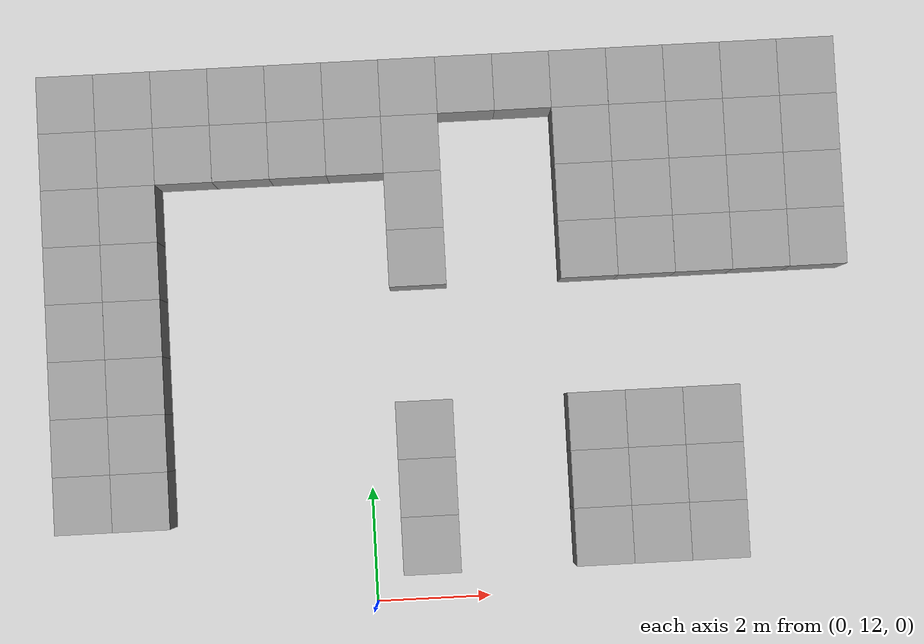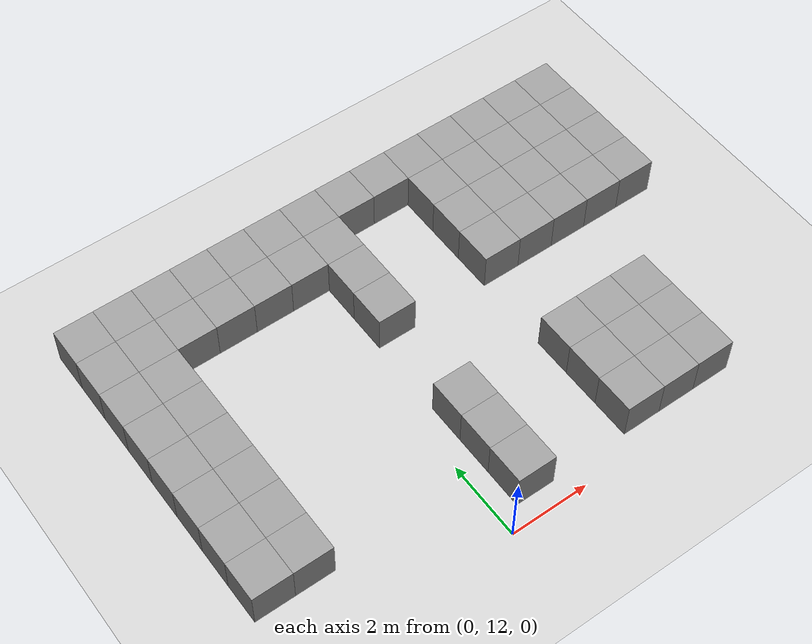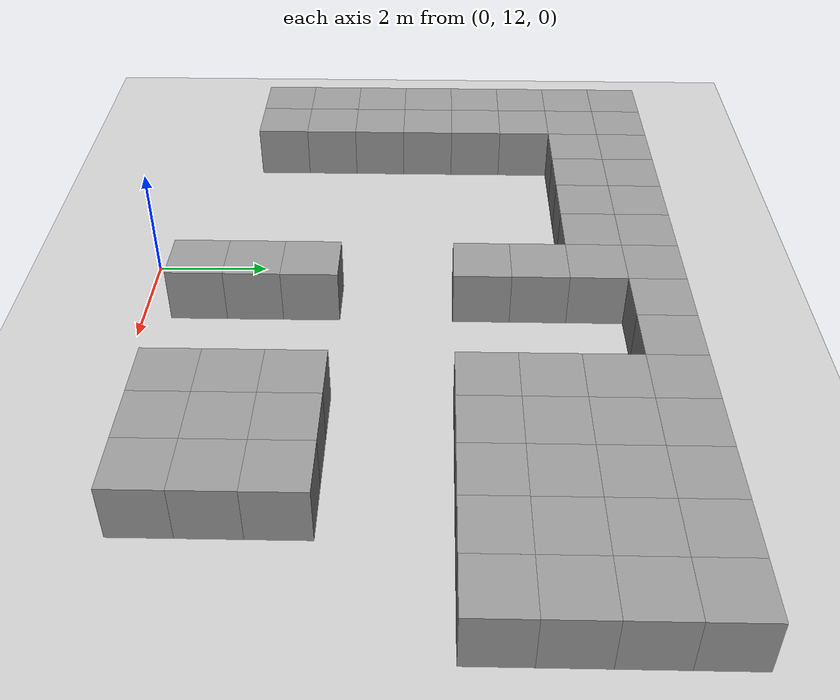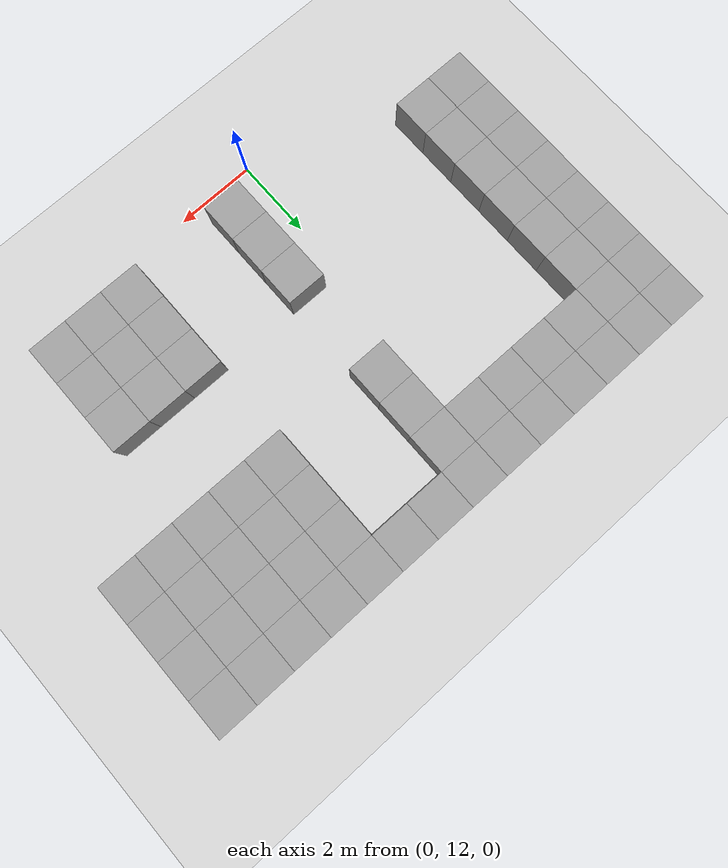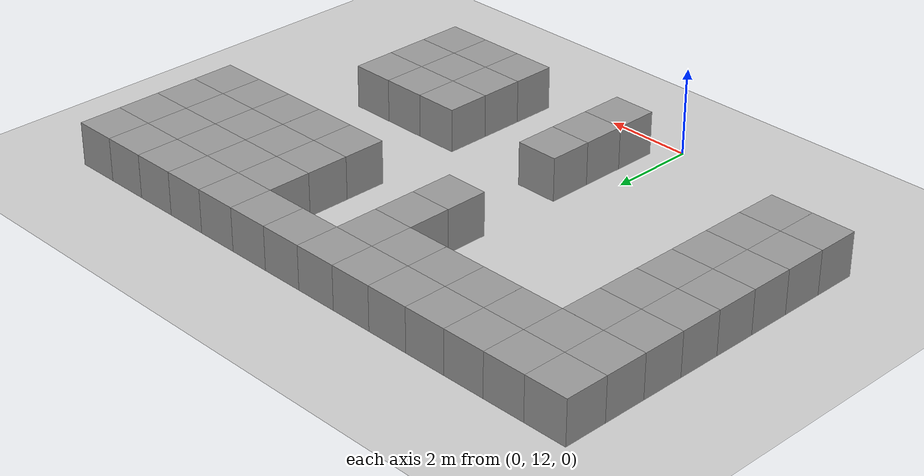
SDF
<sdf version="1.4">
 <world name="default">
  <model name="ground_plane">
   <static>true</static>
   <link name="link">
    <collision name="collision">
     <geometry><plane><normal>0 0 1</normal><size>100 100</size></plane></geometry>
     <surface><friction><ode><mu>100</mu><mu2>50</mu2></ode></friction></surface>
    </collision>
    <visual name="visual">
     <cast_shadows>0</cast_shadows>
     <geometry><plane><normal>0 0 1</normal><size>100 100</size></plane></geometry>
     <material>
      <script><uri>file://media/materials/scripts/gazebo.material</uri><name>Gazebo/Grey</name></script>
     </material>
    </visual>
    <velocity_decay><linear>0</linear><angular>0</angular></velocity_decay>
   </link>
  </model>
  <model name="unit_box_76">
   <pose>-5 14 0.5 0 -0 6e-06</pose>
   <static>true</static>
   <link name="link">
    <inertial>
     <mass>1</mass>
     <inertia><ixx>1</ixx><ixy>0</ixy><ixz>0</ixz><iyy>1</iyy><iyz>0</iyz><izz>1</izz></inertia>
    </inertial>
    <collision name="collision"><geometry><box><size>1 1 1</size></box></geometry></collision>
    <visual name="visual">
     <geometry><box><size>1 1 1</size></box></geometry>
     <material>
      <script><uri>file://media/materials/scripts/gazebo.material</uri><name>Gazebo/Grey</name></script>
     </material>
    </visual>
    <velocity_decay><linear>0</linear><angular>0</angular></velocity_decay>
   </link>
   <static>true</static>
  </model>
  <model name="unit_box_77">
   <pose>-4.99999 15 0.5 0 -0 7e-06</pose>
   <static>true</static>
   <link name="link">
    <inertial>
     <mass>1</mass>
     <inertia><ixx>1</ixx><ixy>0</ixy><ixz>0</ixz><iyy>1</iyy><iyz>0</iyz><izz>1</izz></inertia>
    </inertial>
    <collision name="collision"><geometry><box><size>1 1 1</size></box></geometry></collision>
    <visual name="visual">
     <geometry><box><size>1 1 1</size></box></geometry>
     <material>
      <script><uri>file://media/materials/scripts/gazebo.material</uri><name>Gazebo/Grey</name></script>
     </material>
    </visual>
    <velocity_decay><linear>0</linear><angular>0</angular></velocity_decay>
   </link>
   <static>true</static>
  </model>
  <model name="unit_box_78">
   <pose>-5 16 0.5 0 -0 7e-06</pose>
   <static>true</static>
   <link name="link">
    <inertial>
     <mass>1</mass>
     <inertia><ixx>1</ixx><ixy>0</ixy><ixz>0</ixz><iyy>1</iyy><iyz>0</iyz><izz>1</izz></inertia>
    </inertial>
    <collision name="collision"><geometry><box><size>1 1 1</size></box></geometry></collision>
    <visual name="visual">
     <geometry><box><size>1 1 1</size></box></geometry>
     <material>
      <script><uri>file://media/materials/scripts/gazebo.material</uri><name>Gazebo/Grey</name></script>
     </material>
    </visual>
    <velocity_decay><linear>0</linear><angular>0</angular></velocity_decay>
   </link>
   <static>true</static>
  </model>
  <model name="unit_box_79">
   <pose>-4.99997 17 0.5 0 -0 6e-06</pose>
   <static>true</static>
   <link name="link">
    <inertial>
     <mass>1</mass>
     <inertia><ixx>1</ixx><ixy>0</ixy><ixz>0</ixz><iyy>1</iyy><iyz>0</iyz><izz>1</izz></inertia>
    </inertial>
    <collision name="collision"><geometry><box><size>1 1 1</size></box></geometry></collision>
    <visual name="visual">
     <geometry><box><size>1 1 1</size></box></geometry>
     <material>
      <script><uri>file://media/materials/scripts/gazebo.material</uri><name>Gazebo/Grey</name></script>
     </material>
    </visual>
    <velocity_decay><linear>0</linear><angular>0</angular></velocity_decay>
   </link>
   <static>true</static>
  </model>
  <model name="unit_box_80">
   <pose>-4.99997 18 0.5 0 -0 3e-06</pose>
   <static>true</static>
   <link name="link">
    <inertial>
     <mass>1</mass>
     <inertia><ixx>1</ixx><ixy>0</ixy><ixz>0</ixz><iyy>1</iyy><iyz>0</iyz><izz>1</izz></inertia>
    </inertial>
    <collision name="collision"><geometry><box><size>1 1 1</size></box></geometry></collision>
    <visual name="visual">
     <geometry><box><size>1 1 1</size></box></geometry>
     <material>
      <script><uri>file://media/materials/scripts/gazebo.material</uri><name>Gazebo/Grey</name></script>
     </material>
    </visual>
    <velocity_decay><linear>0</linear><angular>0</angular></velocity_decay>
   </link>
   <static>true</static>
  </model>
  <model name="unit_box_96">
   <pose>-4.99997 19 0.5 0 -0 1e-06</pose>
   <static>true</static>
   <link name="link">
    <inertial>
     <mass>1</mass>
     <inertia><ixx>1</ixx><ixy>0</ixy><ixz>0</ixz><iyy>1</iyy><iyz>0</iyz><izz>1</izz></inertia>
    </inertial>
    <collision name="collision"><geometry><box><size>1 1 1</size></box></geometry></collision>
    <visual name="visual">
     <geometry><box><size>1 1 1</size></box></geometry>
     <material>
      <script><uri>file://media/materials/scripts/gazebo.material</uri><name>Gazebo/Grey</name></script>
     </material>
    </visual>
    <velocity_decay><linear>0</linear><angular>0</angular></velocity_decay>
   </link>
   <static>true</static>
  </model>
  <model name="unit_box_97">
   <pose>-4.99997 20 0.5 0 -0 1e-06</pose>
   <static>true</static>
   <link name="link">
    <inertial>
     <mass>1</mass>
     <inertia><ixx>1</ixx><ixy>0</ixy><ixz>0</ixz><iyy>1</iyy><iyz>0</iyz><izz>1</izz></inertia>
    </inertial>
    <collision name="collision"><geometry><box><size>1 1 1</size></box></geometry></collision>
    <visual name="visual">
     <geometry><box><size>1 1 1</size></box></geometry>
     <material>
      <script><uri>file://media/materials/scripts/gazebo.material</uri><name>Gazebo/Grey</name></script>
     </material>
    </visual>
    <velocity_decay><linear>0</linear><angular>0</angular></velocity_decay>
   </link>
   <static>true</static>
  </model>
  <model name="unit_box_98">
   <pose>-5.00001 21 0.5 0 -0 0</pose>
   <static>true</static>
   <link name="link">
    <inertial>
     <mass>1</mass>
     <inertia><ixx>1</ixx><ixy>0</ixy><ixz>0</ixz><iyy>1</iyy><iyz>0</iyz><izz>1</izz></inertia>
    </inertial>
    <collision name="collision"><geometry><box><size>1 1 1</size></box></geometry></collision>
    <visual name="visual">
     <geometry><box><size>1 1 1</size></box></geometry>
     <material>
      <script><uri>file://media/materials/scripts/gazebo.material</uri><name>Gazebo/Grey</name></script>
     </material>
    </visual>
    <velocity_decay><linear>0</linear><angular>0</angular></velocity_decay>
   </link>
   <static>true</static>
  </model>
  <model name="unit_box_99">
   <pose>-4.00001 21 0.5 0 0 -1e-06</pose>
   <static>true</static>
   <link name="link">
    <inertial>
     <mass>1</mass>
     <inertia><ixx>1</ixx><ixy>0</ixy><ixz>0</ixz><iyy>1</iyy><iyz>0</iyz><izz>1</izz></inertia>
    </inertial>
    <collision name="collision"><geometry><box><size>1 1 1</size></box></geometry></collision>
    <visual name="visual">
     <geometry><box><size>1 1 1</size></box></geometry>
     <material>
      <script><uri>file://media/materials/scripts/gazebo.material</uri><name>Gazebo/Grey</name></script>
     </material>
    </visual>
    <velocity_decay><linear>0</linear><angular>0</angular></velocity_decay>
   </link>
   <static>true</static>
  </model>
  <model name="unit_box_100">
   <pose>-3.00001 21 0.5 0 0 -1e-06</pose>
   <static>true</static>
   <link name="link">
    <inertial>
     <mass>1</mass>
     <inertia><ixx>1</ixx><ixy>0</ixy><ixz>0</ixz><iyy>1</iyy><iyz>0</iyz><izz>1</izz></inertia>
    </inertial>
    <collision name="collision"><geometry><box><size>1 1 1</size></box></geometry></collision>
    <visual name="visual">
     <geometry><box><size>1 1 1</size></box></geometry>
     <material>
      <script><uri>file://media/materials/scripts/gazebo.material</uri><name>Gazebo/Grey</name></script>
     </material>
    </visual>
    <velocity_decay><linear>0</linear><angular>0</angular></velocity_decay>
   </link>
   <static>true</static>
  </model>
  <model name="unit_box_101">
   <pose>-2.00001 21 0.5 0 0 -1e-06</pose>
   <static>true</static>
   <link name="link">
    <inertial>
     <mass>1</mass>
     <inertia><ixx>1</ixx><ixy>0</ixy><ixz>0</ixz><iyy>1</iyy><iyz>0</iyz><izz>1</izz></inertia>
    </inertial>
    <collision name="collision"><geometry><box><size>1 1 1</size></box></geometry></collision>
    <visual name="visual">
     <geometry><box><size>1 1 1</size></box></geometry>
     <material>
      <script><uri>file://media/materials/scripts/gazebo.material</uri><name>Gazebo/Grey</name></script>
     </material>
    </visual>
    <velocity_decay><linear>0</linear><angular>0</angular></velocity_decay>
   </link>
   <static>true</static>
  </model>
  <model name="unit_box_102">
   <pose>-1.00001 21 0.5 0 -0 0</pose>
   <static>true</static>
   <link name="link">
    <inertial>
     <mass>1</mass>
     <inertia><ixx>1</ixx><ixy>0</ixy><ixz>0</ixz><iyy>1</iyy><iyz>0</iyz><izz>1</izz></inertia>
    </inertial>
    <collision name="collision"><geometry><box><size>1 1 1</size></box></geometry></collision>
    <visual name="visual">
     <geometry><box><size>1 1 1</size></box></geometry>
     <material>
      <script><uri>file://media/materials/scripts/gazebo.material</uri><name>Gazebo/Grey</name></script>
     </material>
    </visual>
    <velocity_decay><linear>0</linear><angular>0</angular></velocity_decay>
   </link>
   <static>true</static>
  </model>
  <model name="unit_box_103">
   <pose>-1e-05 21 0.5 0 -0 0</pose>
   <static>true</static>
   <link name="link">
    <inertial>
     <mass>1</mass>
     <inertia><ixx>1</ixx><ixy>0</ixy><ixz>0</ixz><iyy>1</iyy><iyz>0</iyz><izz>1</izz></inertia>
    </inertial>
    <collision name="collision"><geometry><box><size>1 1 1</size></box></geometry></collision>
    <visual name="visual">
     <geometry><box><size>1 1 1</size></box></geometry>
     <material>
      <script><uri>file://media/materials/scripts/gazebo.material</uri><name>Gazebo/Grey</name></script>
     </material>
    </visual>
    <velocity_decay><linear>0</linear><angular>0</angular></velocity_decay>
   </link>
   <static>true</static>
  </model>
  <model name="unit_box_104">
   <pose>0.999991 21 0.5 0 -0 0</pose>
   <static>true</static>
   <link name="link">
    <inertial>
     <mass>1</mass>
     <inertia><ixx>1</ixx><ixy>0</ixy><ixz>0</ixz><iyy>1</iyy><iyz>0</iyz><izz>1</izz></inertia>
    </inertial>
    <collision name="collision"><geometry><box><size>1 1 1</size></box></geometry></collision>
    <visual name="visual">
     <geometry><box><size>1 1 1</size></box></geometry>
     <material>
      <script><uri>file://media/materials/scripts/gazebo.material</uri><name>Gazebo/Grey</name></script>
     </material>
    </visual>
    <velocity_decay><linear>0</linear><angular>0</angular></velocity_decay>
   </link>
   <static>true</static>
  </model>
  <model name="unit_box_105">
   <pose>1.99999 21 0.5 0 -0 0</pose>
   <static>true</static>
   <link name="link">
    <inertial>
     <mass>1</mass>
     <inertia><ixx>1</ixx><ixy>0</ixy><ixz>0</ixz><iyy>1</iyy><iyz>0</iyz><izz>1</izz></inertia>
    </inertial>
    <collision name="collision"><geometry><box><size>1 1 1</size></box></geometry></collision>
    <visual name="visual">
     <geometry><box><size>1 1 1</size></box></geometry>
     <material>
      <script><uri>file://media/materials/scripts/gazebo.material</uri><name>Gazebo/Grey</name></script>
     </material>
    </visual>
    <velocity_decay><linear>0</linear><angular>0</angular></velocity_decay>
   </link>
   <static>true</static>
  </model>
  <model name="unit_box_106">
   <pose>2.99999 21 0.5 0 -0 1e-06</pose>
   <static>true</static>
   <link name="link">
    <inertial>
     <mass>1</mass>
     <inertia><ixx>1</ixx><ixy>0</ixy><ixz>0</ixz><iyy>1</iyy><iyz>0</iyz><izz>1</izz></inertia>
    </inertial>
    <collision name="collision"><geometry><box><size>1 1 1</size></box></geometry></collision>
    <visual name="visual">
     <geometry><box><size>1 1 1</size></box></geometry>
     <material>
      <script><uri>file://media/materials/scripts/gazebo.material</uri><name>Gazebo/Grey</name></script>
     </material>
    </visual>
    <velocity_decay><linear>0</linear><angular>0</angular></velocity_decay>
   </link>
   <static>true</static>
  </model>
  <model name="unit_box_107">
   <pose>3.99999 21 0.5 0 -0 2e-06</pose>
   <static>true</static>
   <link name="link">
    <inertial>
     <mass>1</mass>
     <inertia><ixx>1</ixx><ixy>0</ixy><ixz>0</ixz><iyy>1</iyy><iyz>0</iyz><izz>1</izz></inertia>
    </inertial>
    <collision name="collision"><geometry><box><size>1 1 1</size></box></geometry></collision>
    <visual name="visual">
     <geometry><box><size>1 1 1</size></box></geometry>
     <material>
      <script><uri>file://media/materials/scripts/gazebo.material</uri><name>Gazebo/Grey</name></script>
     </material>
    </visual>
    <velocity_decay><linear>0</linear><angular>0</angular></velocity_decay>
   </link>
   <static>true</static>
  </model>
  <model name="unit_box_108">
   <pose>5 21 0.5 0 -0 3e-06</pose>
   <static>true</static>
   <link name="link">
    <inertial>
     <mass>1</mass>
     <inertia><ixx>1</ixx><ixy>0</ixy><ixz>0</ixz><iyy>1</iyy><iyz>0</iyz><izz>1</izz></inertia>
    </inertial>
    <collision name="collision"><geometry><box><size>1 1 1</size></box></geometry></collision>
    <visual name="visual">
     <geometry><box><size>1 1 1</size></box></geometry>
     <material>
      <script><uri>file://media/materials/scripts/gazebo.material</uri><name>Gazebo/Grey</name></script>
     </material>
    </visual>
    <velocity_decay><linear>0</linear><angular>0</angular></velocity_decay>
   </link>
   <static>true</static>
  </model>
  <model name="unit_box_109">
   <pose>6 20.9999 0.5 0 -0 3e-06</pose>
   <static>true</static>
   <link name="link">
    <inertial>
     <mass>1</mass>
     <inertia><ixx>1</ixx><ixy>0</ixy><ixz>0</ixz><iyy>1</iyy><iyz>0</iyz><izz>1</izz></inertia>
    </inertial>
    <collision name="collision"><geometry><box><size>1 1 1</size></box></geometry></collision>
    <visual name="visual">
     <geometry><box><size>1 1 1</size></box></geometry>
     <material>
      <script><uri>file://media/materials/scripts/gazebo.material</uri><name>Gazebo/Grey</name></script>
     </material>
    </visual>
    <velocity_decay><linear>0</linear><angular>0</angular></velocity_decay>
   </link>
   <static>true</static>
  </model>
  <model name="unit_box_110">
   <pose>7 21 0.5 0 -0 4e-06</pose>
   <static>true</static>
   <link name="link">
    <inertial>
     <mass>1</mass>
     <inertia><ixx>1</ixx><ixy>0</ixy><ixz>0</ixz><iyy>1</iyy><iyz>0</iyz><izz>1</izz></inertia>
    </inertial>
    <collision name="collision"><geometry><box><size>1 1 1</size></box></geometry></collision>
    <visual name="visual">
     <geometry><box><size>1 1 1</size></box></geometry>
     <material>
      <script><uri>file://media/materials/scripts/gazebo.material</uri><name>Gazebo/Grey</name></script>
     </material>
    </visual>
    <velocity_decay><linear>0</linear><angular>0</angular></velocity_decay>
   </link>
   <static>true</static>
  </model>
  <model name="unit_box_111">
   <pose>8 21 0.5 0 -0 3e-06</pose>
   <static>true</static>
   <link name="link">
    <inertial>
     <mass>1</mass>
     <inertia><ixx>1</ixx><ixy>0</ixy><ixz>0</ixz><iyy>1</iyy><iyz>0</iyz><izz>1</izz></inertia>
    </inertial>
    <collision name="collision"><geometry><box><size>1 1 1</size></box></geometry></collision>
    <visual name="visual">
     <geometry><box><size>1 1 1</size></box></geometry>
     <material>
      <script><uri>file://media/materials/scripts/gazebo.material</uri><name>Gazebo/Grey</name></script>
     </material>
    </visual>
    <velocity_decay><linear>0</linear><angular>0</angular></velocity_decay>
   </link>
   <static>true</static>
  </model>
  <model name="unit_box_73_0">
   <pose>-3.99993 14 0.5 -0 -0 -2e-06</pose>
   <link name="link">
    <inertial>
     <mass>1</mass>
     <inertia><ixx>1</ixx><ixy>0</ixy><ixz>0</ixz><iyy>1</iyy><iyz>0</iyz><izz>1</izz></inertia>
    </inertial>
    <collision name="collision"><geometry><box><size>1 1 1</size></box></geometry></collision>
    <visual name="visual">
     <geometry><box><size>1 1 1</size></box></geometry>
     <material>
      <script><uri>file://media/materials/scripts/gazebo.material</uri><name>Gazebo/Grey</name></script>
     </material>
    </visual>
    <velocity_decay><linear>0</linear><angular>0</angular></velocity_decay>
   </link>
   <static>true</static>
  </model>
  <model name="unit_box_74_0">
   <pose>-3.99993 15 0.5 0 0 -4e-06</pose>
   <link name="link">
    <inertial>
     <mass>1</mass>
     <inertia><ixx>1</ixx><ixy>0</ixy><ixz>0</ixz><iyy>1</iyy><iyz>0</iyz><izz>1</izz></inertia>
    </inertial>
    <collision name="collision"><geometry><box><size>1 1 1</size></box></geometry></collision>
    <visual name="visual">
     <geometry><box><size>1 1 1</size></box></geometry>
     <material>
      <script><uri>file://media/materials/scripts/gazebo.material</uri><name>Gazebo/Grey</name></script>
     </material>
    </visual>
    <velocity_decay><linear>0</linear><angular>0</angular></velocity_decay>
   </link>
   <static>true</static>
  </model>
  <model name="unit_box_75_0">
   <pose>-3.99999 16 0.5 0 -0 -3e-06</pose>
   <link name="link">
    <inertial>
     <mass>1</mass>
     <inertia><ixx>1</ixx><ixy>0</ixy><ixz>0</ixz><iyy>1</iyy><iyz>0</iyz><izz>1</izz></inertia>
    </inertial>
    <collision name="collision"><geometry><box><size>1 1 1</size></box></geometry></collision>
    <visual name="visual">
     <geometry><box><size>1 1 1</size></box></geometry>
     <material>
      <script><uri>file://media/materials/scripts/gazebo.material</uri><name>Gazebo/Grey</name></script>
     </material>
    </visual>
    <velocity_decay><linear>0</linear><angular>0</angular></velocity_decay>
   </link>
   <static>true</static>
  </model>
  <model name="unit_box_76_0">
   <pose>-3.99995 17 0.5 0 0 -4e-06</pose>
   <link name="link">
    <inertial>
     <mass>1</mass>
     <inertia><ixx>1</ixx><ixy>0</ixy><ixz>0</ixz><iyy>1</iyy><iyz>0</iyz><izz>1</izz></inertia>
    </inertial>
    <collision name="collision"><geometry><box><size>1 1 1</size></box></geometry></collision>
    <visual name="visual">
     <geometry><box><size>1 1 1</size></box></geometry>
     <material>
      <script><uri>file://media/materials/scripts/gazebo.material</uri><name>Gazebo/Grey</name></script>
     </material>
    </visual>
    <velocity_decay><linear>0</linear><angular>0</angular></velocity_decay>
   </link>
   <static>true</static>
  </model>
  <model name="unit_box_77_0">
   <pose>-3.99995 18 0.5 0 0 -4e-06</pose>
   <link name="link">
    <inertial>
     <mass>1</mass>
     <inertia><ixx>1</ixx><ixy>0</ixy><ixz>0</ixz><iyy>1</iyy><iyz>0</iyz><izz>1</izz></inertia>
    </inertial>
    <collision name="collision"><geometry><box><size>1 1 1</size></box></geometry></collision>
    <visual name="visual">
     <geometry><box><size>1 1 1</size></box></geometry>
     <material>
      <script><uri>file://media/materials/scripts/gazebo.material</uri><name>Gazebo/Grey</name></script>
     </material>
    </visual>
    <velocity_decay><linear>0</linear><angular>0</angular></velocity_decay>
   </link>
   <static>true</static>
  </model>
  <model name="unit_box_78_0">
   <pose>-3.99992 19 0.5 0 0 -4e-06</pose>
   <link name="link">
    <inertial>
     <mass>1</mass>
     <inertia><ixx>1</ixx><ixy>0</ixy><ixz>0</ixz><iyy>1</iyy><iyz>0</iyz><izz>1</izz></inertia>
    </inertial>
    <collision name="collision"><geometry><box><size>1 1 1</size></box></geometry></collision>
    <visual name="visual">
     <geometry><box><size>1 1 1</size></box></geometry>
     <material>
      <script><uri>file://media/materials/scripts/gazebo.material</uri><name>Gazebo/Grey</name></script>
     </material>
    </visual>
    <velocity_decay><linear>0</linear><angular>0</angular></velocity_decay>
   </link>
   <static>true</static>
  </model>
  <model name="unit_box_79_0">
   <pose>-3.99997 20 0.5 0 0 -1e-06</pose>
   <link name="link">
    <inertial>
     <mass>1</mass>
     <inertia><ixx>1</ixx><ixy>0</ixy><ixz>0</ixz><iyy>1</iyy><iyz>0</iyz><izz>1</izz></inertia>
    </inertial>
    <collision name="collision"><geometry><box><size>1 1 1</size></box></geometry></collision>
    <visual name="visual">
     <geometry><box><size>1 1 1</size></box></geometry>
     <material>
      <script><uri>file://media/materials/scripts/gazebo.material</uri><name>Gazebo/Grey</name></script>
     </material>
    </visual>
    <velocity_decay><linear>0</linear><angular>0</angular></velocity_decay>
   </link>
   <static>true</static>
  </model>
  <model name="unit_box_80_0">
   <pose>-2.99997 20 0.5 0 0 -4e-06</pose>
   <link name="link">
    <inertial>
     <mass>1</mass>
     <inertia><ixx>1</ixx><ixy>0</ixy><ixz>0</ixz><iyy>1</iyy><iyz>0</iyz><izz>1</izz></inertia>
    </inertial>
    <collision name="collision"><geometry><box><size>1 1 1</size></box></geometry></collision>
    <visual name="visual">
     <geometry><box><size>1 1 1</size></box></geometry>
     <material>
      <script><uri>file://media/materials/scripts/gazebo.material</uri><name>Gazebo/Grey</name></script>
     </material>
    </visual>
    <velocity_decay><linear>0</linear><angular>0</angular></velocity_decay>
   </link>
   <static>true</static>
  </model>
  <model name="unit_box_81_0">
   <pose>-1.99996 20 0.5 0 0 -1e-06</pose>
   <link name="link">
    <inertial>
     <mass>1</mass>
     <inertia><ixx>1</ixx><ixy>0</ixy><ixz>0</ixz><iyy>1</iyy><iyz>0</iyz><izz>1</izz></inertia>
    </inertial>
    <collision name="collision"><geometry><box><size>1 1 1</size></box></geometry></collision>
    <visual name="visual">
     <geometry><box><size>1 1 1</size></box></geometry>
     <material>
      <script><uri>file://media/materials/scripts/gazebo.material</uri><name>Gazebo/Grey</name></script>
     </material>
    </visual>
    <velocity_decay><linear>0</linear><angular>0</angular></velocity_decay>
   </link>
   <static>true</static>
  </model>
  <model name="unit_box_82_0">
   <pose>-0.999961 20 0.5 0 0 -1e-06</pose>
   <link name="link">
    <inertial>
     <mass>1</mass>
     <inertia><ixx>1</ixx><ixy>0</ixy><ixz>0</ixz><iyy>1</iyy><iyz>0</iyz><izz>1</izz></inertia>
    </inertial>
    <collision name="collision"><geometry><box><size>1 1 1</size></box></geometry></collision>
    <visual name="visual">
     <geometry><box><size>1 1 1</size></box></geometry>
     <material>
      <script><uri>file://media/materials/scripts/gazebo.material</uri><name>Gazebo/Grey</name></script>
     </material>
    </visual>
    <velocity_decay><linear>0</linear><angular>0</angular></velocity_decay>
   </link>
   <static>true</static>
  </model>
  <model name="unit_box_83_0">
   <pose>4.2e-05 20 0.5 0 -0 1e-06</pose>
   <link name="link">
    <inertial>
     <mass>1</mass>
     <inertia><ixx>1</ixx><ixy>0</ixy><ixz>0</ixz><iyy>1</iyy><iyz>0</iyz><izz>1</izz></inertia>
    </inertial>
    <collision name="collision"><geometry><box><size>1 1 1</size></box></geometry></collision>
    <visual name="visual">
     <geometry><box><size>1 1 1</size></box></geometry>
     <material>
      <script><uri>file://media/materials/scripts/gazebo.material</uri><name>Gazebo/Grey</name></script>
     </material>
    </visual>
    <velocity_decay><linear>0</linear><angular>0</angular></velocity_decay>
   </link>
   <static>true</static>
  </model>
  <model name="unit_box_84_0">
   <pose>1.00004 20 0.5 0 -0 0</pose>
   <link name="link">
    <inertial>
     <mass>1</mass>
     <inertia><ixx>1</ixx><ixy>0</ixy><ixz>0</ixz><iyy>1</iyy><iyz>0</iyz><izz>1</izz></inertia>
    </inertial>
    <collision name="collision"><geometry><box><size>1 1 1</size></box></geometry></collision>
    <visual name="visual">
     <geometry><box><size>1 1 1</size></box></geometry>
     <material>
      <script><uri>file://media/materials/scripts/gazebo.material</uri><name>Gazebo/Grey</name></script>
     </material>
    </visual>
    <velocity_decay><linear>0</linear><angular>0</angular></velocity_decay>
   </link>
   <static>true</static>
  </model>
  <model name="unit_box_101_0">
   <pose>1.00001 13 0.5 0 -0 4e-06</pose>
   <link name="link">
    <inertial>
     <mass>1</mass>
     <inertia><ixx>1</ixx><ixy>0</ixy><ixz>0</ixz><iyy>1</iyy><iyz>0</iyz><izz>1</izz></inertia>
    </inertial>
    <collision name="collision"><geometry><box><size>1 1 1</size></box></geometry></collision>
    <visual name="visual">
     <geometry><box><size>1 1 1</size></box></geometry>
     <material>
      <script><uri>file://media/materials/scripts/gazebo.material</uri><name>Gazebo/Grey</name></script>
     </material>
    </visual>
    <velocity_decay><linear>0</linear><angular>0</angular></velocity_decay>
   </link>
   <static>true</static>
  </model>
  <model name="unit_box_102_0">
   <pose>0.999998 14 0.5 0 -0 2e-06</pose>
   <link name="link">
    <inertial>
     <mass>1</mass>
     <inertia><ixx>1</ixx><ixy>0</ixy><ixz>0</ixz><iyy>1</iyy><iyz>0</iyz><izz>1</izz></inertia>
    </inertial>
    <collision name="collision"><geometry><box><size>1 1 1</size></box></geometry></collision>
    <visual name="visual">
     <geometry><box><size>1 1 1</size></box></geometry>
     <material>
      <script><uri>file://media/materials/scripts/gazebo.material</uri><name>Gazebo/Grey</name></script>
     </material>
    </visual>
    <velocity_decay><linear>0</linear><angular>0</angular></velocity_decay>
   </link>
   <static>true</static>
  </model>
  <model name="unit_box_103_0">
   <pose>1 15 0.5 0 -0 1e-06</pose>
   <link name="link">
    <inertial>
     <mass>1</mass>
     <inertia><ixx>1</ixx><ixy>0</ixy><ixz>0</ixz><iyy>1</iyy><iyz>0</iyz><izz>1</izz></inertia>
    </inertial>
    <collision name="collision"><geometry><box><size>1 1 1</size></box></geometry></collision>
    <visual name="visual">
     <geometry><box><size>1 1 1</size></box></geometry>
     <material>
      <script><uri>file://media/materials/scripts/gazebo.material</uri><name>Gazebo/Grey</name></script>
     </material>
    </visual>
    <velocity_decay><linear>0</linear><angular>0</angular></velocity_decay>
   </link>
   <static>true</static>
  </model>
  <model name="unit_box_104_0">
   <pose>1 19 0.5 0 -0 0</pose>
   <link name="link">
    <inertial>
     <mass>1</mass>
     <inertia><ixx>1</ixx><ixy>0</ixy><ixz>0</ixz><iyy>1</iyy><iyz>0</iyz><izz>1</izz></inertia>
    </inertial>
    <collision name="collision"><geometry><box><size>1 1 1</size></box></geometry></collision>
    <visual name="visual">
     <geometry><box><size>1 1 1</size></box></geometry>
     <material>
      <script><uri>file://media/materials/scripts/gazebo.material</uri><name>Gazebo/Grey</name></script>
     </material>
    </visual>
    <velocity_decay><linear>0</linear><angular>0</angular></velocity_decay>
   </link>
   <static>true</static>
  </model>
  <model name="unit_box_105_0">
   <pose>1 18 0.5 0 -0 1e-06</pose>
   <link name="link">
    <inertial>
     <mass>1</mass>
     <inertia><ixx>1</ixx><ixy>0</ixy><ixz>0</ixz><iyy>1</iyy><iyz>0</iyz><izz>1</izz></inertia>
    </inertial>
    <collision name="collision"><geometry><box><size>1 1 1</size></box></geometry></collision>
    <visual name="visual">
     <geometry><box><size>1 1 1</size></box></geometry>
     <material>
      <script><uri>file://media/materials/scripts/gazebo.material</uri><name>Gazebo/Grey</name></script>
     </material>
    </visual>
    <velocity_decay><linear>0</linear><angular>0</angular></velocity_decay>
   </link>
   <static>true</static>
  </model>
  <model name="unit_box_313">
   <pose>3.99999 13 0.5 0 -0 2e-06</pose>
   <link name="link">
    <inertial>
     <mass>1</mass>
     <inertia><ixx>1</ixx><ixy>0</ixy><ixz>0</ixz><iyy>1</iyy><iyz>0</iyz><izz>1</izz></inertia>
    </inertial>
    <collision name="collision"><geometry><box><size>1 1 1</size></box></geometry></collision>
    <visual name="visual">
     <geometry><box><size>1 1 1</size></box></geometry>
     <material>
      <script><uri>file://media/materials/scripts/gazebo.material</uri><name>Gazebo/Grey</name></script>
     </material>
    </visual>
    <velocity_decay><linear>0</linear><angular>0</angular></velocity_decay>
   </link>
   <static>true</static>
  </model>
  <model name="unit_box_314">
   <pose>4 14 0.5 0 -0 2e-06</pose>
   <link name="link">
    <inertial>
     <mass>1</mass>
     <inertia><ixx>1</ixx><ixy>0</ixy><ixz>0</ixz><iyy>1</iyy><iyz>0</iyz><izz>1</izz></inertia>
    </inertial>
    <collision name="collision"><geometry><box><size>1 1 1</size></box></geometry></collision>
    <visual name="visual">
     <geometry><box><size>1 1 1</size></box></geometry>
     <material>
      <script><uri>file://media/materials/scripts/gazebo.material</uri><name>Gazebo/Grey</name></script>
     </material>
    </visual>
    <velocity_decay><linear>0</linear><angular>0</angular></velocity_decay>
   </link>
   <static>true</static>
  </model>
  <model name="unit_box_317">
   <pose>5 13 0.5 0 -0 5e-06</pose>
   <link name="link">
    <inertial>
     <mass>1</mass>
     <inertia><ixx>1</ixx><ixy>0</ixy><ixz>0</ixz><iyy>1</iyy><iyz>0</iyz><izz>1</izz></inertia>
    </inertial>
    <collision name="collision"><geometry><box><size>1 1 1</size></box></geometry></collision>
    <visual name="visual">
     <geometry><box><size>1 1 1</size></box></geometry>
     <material>
      <script><uri>file://media/materials/scripts/gazebo.material</uri><name>Gazebo/Grey</name></script>
     </material>
    </visual>
    <velocity_decay><linear>0</linear><angular>0</angular></velocity_decay>
   </link>
   <static>true</static>
  </model>
  <model name="unit_box_318">
   <pose>5 14 0.5 0 -0 4e-06</pose>
   <link name="link">
    <inertial>
     <mass>1</mass>
     <inertia><ixx>1</ixx><ixy>0</ixy><ixz>0</ixz><iyy>1</iyy><iyz>0</iyz><izz>1</izz></inertia>
    </inertial>
    <collision name="collision"><geometry><box><size>1 1 1</size></box></geometry></collision>
    <visual name="visual">
     <geometry><box><size>1 1 1</size></box></geometry>
     <material>
      <script><uri>file://media/materials/scripts/gazebo.material</uri><name>Gazebo/Grey</name></script>
     </material>
    </visual>
    <velocity_decay><linear>0</linear><angular>0</angular></velocity_decay>
   </link>
   <static>true</static>
  </model>
  <model name="unit_box_321">
   <pose>6 13 0.5 0 -0 2e-06</pose>
   <link name="link">
    <inertial>
     <mass>1</mass>
     <inertia><ixx>1</ixx><ixy>0</ixy><ixz>0</ixz><iyy>1</iyy><iyz>0</iyz><izz>1</izz></inertia>
    </inertial>
    <collision name="collision"><geometry><box><size>1 1 1</size></box></geometry></collision>
    <visual name="visual">
     <geometry><box><size>1 1 1</size></box></geometry>
     <material>
      <script><uri>file://media/materials/scripts/gazebo.material</uri><name>Gazebo/Grey</name></script>
     </material>
    </visual>
    <velocity_decay><linear>0</linear><angular>0</angular></velocity_decay>
   </link>
   <static>true</static>
  </model>
  <model name="unit_box_322">
   <pose>6.00001 14 0.5 0 -0 3e-06</pose>
   <link name="link">
    <inertial>
     <mass>1</mass>
     <inertia><ixx>1</ixx><ixy>0</ixy><ixz>0</ixz><iyy>1</iyy><iyz>0</iyz><izz>1</izz></inertia>
    </inertial>
    <collision name="collision"><geometry><box><size>1 1 1</size></box></geometry></collision>
    <visual name="visual">
     <geometry><box><size>1 1 1</size></box></geometry>
     <material>
      <script><uri>file://media/materials/scripts/gazebo.material</uri><name>Gazebo/Grey</name></script>
     </material>
    </visual>
    <velocity_decay><linear>0</linear><angular>0</angular></velocity_decay>
   </link>
   <static>true</static>
  </model>
  <model name="unit_box_323">
   <pose>3.99999 20 0.5 0 -0 0</pose>
   <link name="link">
    <inertial>
     <mass>1</mass>
     <inertia><ixx>1</ixx><ixy>0</ixy><ixz>0</ixz><iyy>1</iyy><iyz>0</iyz><izz>1</izz></inertia>
    </inertial>
    <collision name="collision"><geometry><box><size>1 1 1</size></box></geometry></collision>
    <visual name="visual">
     <geometry><box><size>1 1 1</size></box></geometry>
     <material>
      <script><uri>file://media/materials/scripts/gazebo.material</uri><name>Gazebo/Grey</name></script>
     </material>
    </visual>
    <velocity_decay><linear>0</linear><angular>0</angular></velocity_decay>
   </link>
   <static>true</static>
  </model>
  <model name="unit_box_324">
   <pose>4 19 0.5 0 -0 1e-06</pose>
   <link name="link">
    <inertial>
     <mass>1</mass>
     <inertia><ixx>1</ixx><ixy>0</ixy><ixz>0</ixz><iyy>1</iyy><iyz>0</iyz><izz>1</izz></inertia>
    </inertial>
    <collision name="collision"><geometry><box><size>1 1 1</size></box></geometry></collision>
    <visual name="visual">
     <geometry><box><size>1 1 1</size></box></geometry>
     <material>
      <script><uri>file://media/materials/scripts/gazebo.material</uri><name>Gazebo/Grey</name></script>
     </material>
    </visual>
    <velocity_decay><linear>0</linear><angular>0</angular></velocity_decay>
   </link>
   <static>true</static>
  </model>
  <model name="unit_box_325">
   <pose>3.99999 18 0.5 -0 -0 -3e-06</pose>
   <link name="link">
    <inertial>
     <mass>1</mass>
     <inertia><ixx>1</ixx><ixy>0</ixy><ixz>0</ixz><iyy>1</iyy><iyz>0</iyz><izz>1</izz></inertia>
    </inertial>
    <collision name="collision"><geometry><box><size>1 1 1</size></box></geometry></collision>
    <visual name="visual">
     <geometry><box><size>1 1 1</size></box></geometry>
     <material>
      <script><uri>file://media/materials/scripts/gazebo.material</uri><name>Gazebo/Grey</name></script>
     </material>
    </visual>
    <velocity_decay><linear>0</linear><angular>0</angular></velocity_decay>
   </link>
   <static>true</static>
  </model>
  <model name="unit_box_326">
   <pose>4 15 0.5 0 -0 0</pose>
   <link name="link">
    <inertial>
     <mass>1</mass>
     <inertia><ixx>1</ixx><ixy>0</ixy><ixz>0</ixz><iyy>1</iyy><iyz>0</iyz><izz>1</izz></inertia>
    </inertial>
    <collision name="collision"><geometry><box><size>1 1 1</size></box></geometry></collision>
    <visual name="visual">
     <geometry><box><size>1 1 1</size></box></geometry>
     <material>
      <script><uri>file://media/materials/scripts/gazebo.material</uri><name>Gazebo/Grey</name></script>
     </material>
    </visual>
    <velocity_decay><linear>0</linear><angular>0</angular></velocity_decay>
   </link>
   <static>true</static>
  </model>
  <model name="unit_box_327">
   <pose>5 15 0.5 0 -0 3e-06</pose>
   <link name="link">
    <inertial>
     <mass>1</mass>
     <inertia><ixx>1</ixx><ixy>0</ixy><ixz>0</ixz><iyy>1</iyy><iyz>0</iyz><izz>1</izz></inertia>
    </inertial>
    <collision name="collision"><geometry><box><size>1 1 1</size></box></geometry></collision>
    <visual name="visual">
     <geometry><box><size>1 1 1</size></box></geometry>
     <material>
      <script><uri>file://media/materials/scripts/gazebo.material</uri><name>Gazebo/Grey</name></script>
     </material>
    </visual>
    <velocity_decay><linear>0</linear><angular>0</angular></velocity_decay>
   </link>
   <static>true</static>
  </model>
  <model name="unit_box_328">
   <pose>6 15 0.5 0 -0 3e-06</pose>
   <link name="link">
    <inertial>
     <mass>1</mass>
     <inertia><ixx>1</ixx><ixy>0</ixy><ixz>0</ixz><iyy>1</iyy><iyz>0</iyz><izz>1</izz></inertia>
    </inertial>
    <collision name="collision"><geometry><box><size>1 1 1</size></box></geometry></collision>
    <visual name="visual">
     <geometry><box><size>1 1 1</size></box></geometry>
     <material>
      <script><uri>file://media/materials/scripts/gazebo.material</uri><name>Gazebo/Grey</name></script>
     </material>
    </visual>
    <velocity_decay><linear>0</linear><angular>0</angular></velocity_decay>
   </link>
   <static>true</static>
  </model>
  <model name="unit_box_329">
   <pose>4.99999 18 0.5 0 -0 1e-06</pose>
   <link name="link">
    <inertial>
     <mass>1</mass>
     <inertia><ixx>1</ixx><ixy>0</ixy><ixz>0</ixz><iyy>1</iyy><iyz>0</iyz><izz>1</izz></inertia>
    </inertial>
    <collision name="collision"><geometry><box><size>1 1 1</size></box></geometry></collision>
    <visual name="visual">
     <geometry><box><size>1 1 1</size></box></geometry>
     <material>
      <script><uri>file://media/materials/scripts/gazebo.material</uri><name>Gazebo/Grey</name></script>
     </material>
    </visual>
    <velocity_decay><linear>0</linear><angular>0</angular></velocity_decay>
   </link>
   <static>true</static>
  </model>
  <model name="unit_box_330">
   <pose>6 17.9999 0.5 0 0 -1e-06</pose>
   <link name="link">
    <inertial>
     <mass>1</mass>
     <inertia><ixx>1</ixx><ixy>0</ixy><ixz>0</ixz><iyy>1</iyy><iyz>0</iyz><izz>1</izz></inertia>
    </inertial>
    <collision name="collision"><geometry><box><size>1 1 1</size></box></geometry></collision>
    <visual name="visual">
     <geometry><box><size>1 1 1</size></box></geometry>
     <material>
      <script><uri>file://media/materials/scripts/gazebo.material</uri><name>Gazebo/Grey</name></script>
     </material>
    </visual>
    <velocity_decay><linear>0</linear><angular>0</angular></velocity_decay>
   </link>
   <static>true</static>
  </model>
  <model name="unit_box_331">
   <pose>7 18 0.5 0 -0 0</pose>
   <link name="link">
    <inertial>
     <mass>1</mass>
     <inertia><ixx>1</ixx><ixy>0</ixy><ixz>0</ixz><iyy>1</iyy><iyz>0</iyz><izz>1</izz></inertia>
    </inertial>
    <collision name="collision"><geometry><box><size>1 1 1</size></box></geometry></collision>
    <visual name="visual">
     <geometry><box><size>1 1 1</size></box></geometry>
     <material>
      <script><uri>file://media/materials/scripts/gazebo.material</uri><name>Gazebo/Grey</name></script>
     </material>
    </visual>
    <velocity_decay><linear>0</linear><angular>0</angular></velocity_decay>
   </link>
   <static>true</static>
  </model>
  <model name="unit_box_332">
   <pose>8 18 0.5 0 -0 -4e-06</pose>
   <link name="link">
    <inertial>
     <mass>1</mass>
     <inertia><ixx>1</ixx><ixy>0</ixy><ixz>0</ixz><iyy>1</iyy><iyz>0</iyz><izz>1</izz></inertia>
    </inertial>
    <collision name="collision"><geometry><box><size>1 1 1</size></box></geometry></collision>
    <visual name="visual">
     <geometry><box><size>1 1 1</size></box></geometry>
     <material>
      <script><uri>file://media/materials/scripts/gazebo.material</uri><name>Gazebo/Grey</name></script>
     </material>
    </visual>
    <velocity_decay><linear>0</linear><angular>0</angular></velocity_decay>
   </link>
   <static>true</static>
  </model>
  <model name="unit_box_355">
   <pose>8 19 0.5 8.07794e-28 1e-06 2e-06</pose>
   <link name="link">
    <inertial>
     <mass>1</mass>
     <inertia><ixx>1</ixx><ixy>0</ixy><ixz>0</ixz><iyy>1</iyy><iyz>0</iyz><izz>1</izz></inertia>
    </inertial>
    <collision name="collision"><geometry><box><size>1 1 1</size></box></geometry></collision>
    <visual name="visual">
     <geometry><box><size>1 1 1</size></box></geometry>
     <material>
      <script><uri>file://media/materials/scripts/gazebo.material</uri><name>Gazebo/Grey</name></script>
     </material>
    </visual>
    <velocity_decay><linear>0</linear><angular>0</angular></velocity_decay>
   </link>
   <static>true</static>
  </model>
  <model name="unit_box_356">
   <pose>7 19 0.5 0 -0 2e-06</pose>
   <link name="link">
    <inertial>
     <mass>1</mass>
     <inertia><ixx>1</ixx><ixy>0</ixy><ixz>0</ixz><iyy>1</iyy><iyz>0</iyz><izz>1</izz></inertia>
    </inertial>
    <collision name="collision"><geometry><box><size>1 1 1</size></box></geometry></collision>
    <visual name="visual">
     <geometry><box><size>1 1 1</size></box></geometry>
     <material>
      <script><uri>file://media/materials/scripts/gazebo.material</uri><name>Gazebo/Grey</name></script>
     </material>
    </visual>
    <velocity_decay><linear>0</linear><angular>0</angular></velocity_decay>
   </link>
   <static>true</static>
  </model>
  <model name="unit_box_358">
   <pose>6 18.9999 0.5 -0 -0 -2e-06</pose>
   <link name="link">
    <inertial>
     <mass>1</mass>
     <inertia><ixx>1</ixx><ixy>0</ixy><ixz>0</ixz><iyy>1</iyy><iyz>0</iyz><izz>1</izz></inertia>
    </inertial>
    <collision name="collision"><geometry><box><size>1 1 1</size></box></geometry></collision>
    <visual name="visual">
     <geometry><box><size>1 1 1</size></box></geometry>
     <material>
      <script><uri>file://media/materials/scripts/gazebo.material</uri><name>Gazebo/Grey</name></script>
     </material>
    </visual>
    <velocity_decay><linear>0</linear><angular>0</angular></velocity_decay>
   </link>
   <static>true</static>
  </model>
  <model name="unit_box_359">
   <pose>5 19 0.5 0 -0 0</pose>
   <link name="link">
    <inertial>
     <mass>1</mass>
     <inertia><ixx>1</ixx><ixy>0</ixy><ixz>0</ixz><iyy>1</iyy><iyz>0</iyz><izz>1</izz></inertia>
    </inertial>
    <collision name="collision"><geometry><box><size>1 1 1</size></box></geometry></collision>
    <visual name="visual">
     <geometry><box><size>1 1 1</size></box></geometry>
     <material>
      <script><uri>file://media/materials/scripts/gazebo.material</uri><name>Gazebo/Grey</name></script>
     </material>
    </visual>
    <velocity_decay><linear>0</linear><angular>0</angular></velocity_decay>
   </link>
   <static>true</static>
  </model>
  <model name="unit_box_360">
   <pose>5 20 0.5 0 -0 1e-06</pose>
   <link name="link">
    <inertial>
     <mass>1</mass>
     <inertia><ixx>1</ixx><ixy>0</ixy><ixz>0</ixz><iyy>1</iyy><iyz>0</iyz><izz>1</izz></inertia>
    </inertial>
    <collision name="collision"><geometry><box><size>1 1 1</size></box></geometry></collision>
    <visual name="visual">
     <geometry><box><size>1 1 1</size></box></geometry>
     <material>
      <script><uri>file://media/materials/scripts/gazebo.material</uri><name>Gazebo/Grey</name></script>
     </material>
    </visual>
    <velocity_decay><linear>0</linear><angular>0</angular></velocity_decay>
   </link>
   <static>true</static>
  </model>
  <model name="unit_box_361">
   <pose>6 19.9999 0.5 0 -0 0</pose>
   <link name="link">
    <inertial>
     <mass>1</mass>
     <inertia><ixx>1</ixx><ixy>0</ixy><ixz>0</ixz><iyy>1</iyy><iyz>0</iyz><izz>1</izz></inertia>
    </inertial>
    <collision name="collision"><geometry><box><size>1 1 1</size></box></geometry></collision>
    <visual name="visual">
     <geometry><box><size>1 1 1</size></box></geometry>
     <material>
      <script><uri>file://media/materials/scripts/gazebo.material</uri><name>Gazebo/Grey</name></script>
     </material>
    </visual>
    <velocity_decay><linear>0</linear><angular>0</angular></velocity_decay>
   </link>
   <static>true</static>
  </model>
  <model name="unit_box_362">
   <pose>7 20 0.5 0 -0 3e-06</pose>
   <link name="link">
    <inertial>
     <mass>1</mass>
     <inertia><ixx>1</ixx><ixy>0</ixy><ixz>0</ixz><iyy>1</iyy><iyz>0</iyz><izz>1</izz></inertia>
    </inertial>
    <collision name="collision"><geometry><box><size>1 1 1</size></box></geometry></collision>
    <visual name="visual">
     <geometry><box><size>1 1 1</size></box></geometry>
     <material>
      <script><uri>file://media/materials/scripts/gazebo.material</uri><name>Gazebo/Grey</name></script>
     </material>
    </visual>
    <velocity_decay><linear>0</linear><angular>0</angular></velocity_decay>
   </link>
   <static>true</static>
  </model>
  <model name="unit_box_363">
   <pose>8 20 0.5 0 -0 3e-06</pose>
   <link name="link">
    <inertial>
     <mass>1</mass>
     <inertia><ixx>1</ixx><ixy>0</ixy><ixz>0</ixz><iyy>1</iyy><iyz>0</iyz><izz>1</izz></inertia>
    </inertial>
    <collision name="collision"><geometry><box><size>1 1 1</size></box></geometry></collision>
    <visual name="visual">
     <geometry><box><size>1 1 1</size></box></geometry>
     <material>
      <script><uri>file://media/materials/scripts/gazebo.material</uri><name>Gazebo/Grey</name></script>
     </material>
    </visual>
    <velocity_decay><linear>0</linear><angular>0</angular></velocity_decay>
   </link>
   <static>true</static>
  </model>
 </world>
</sdf>
